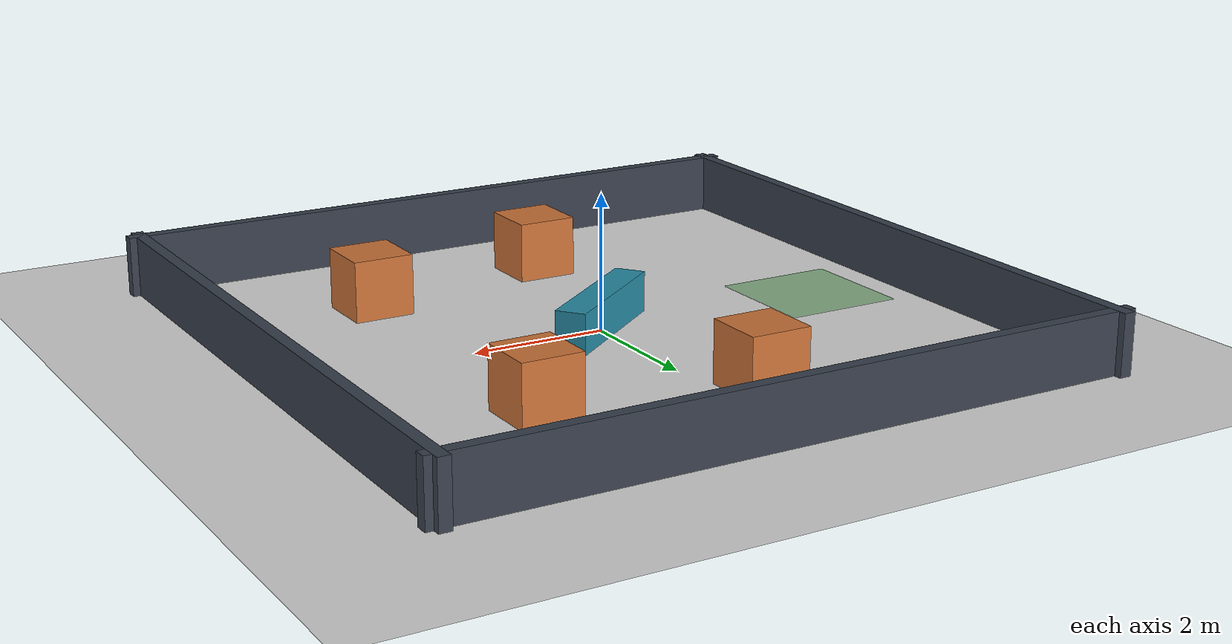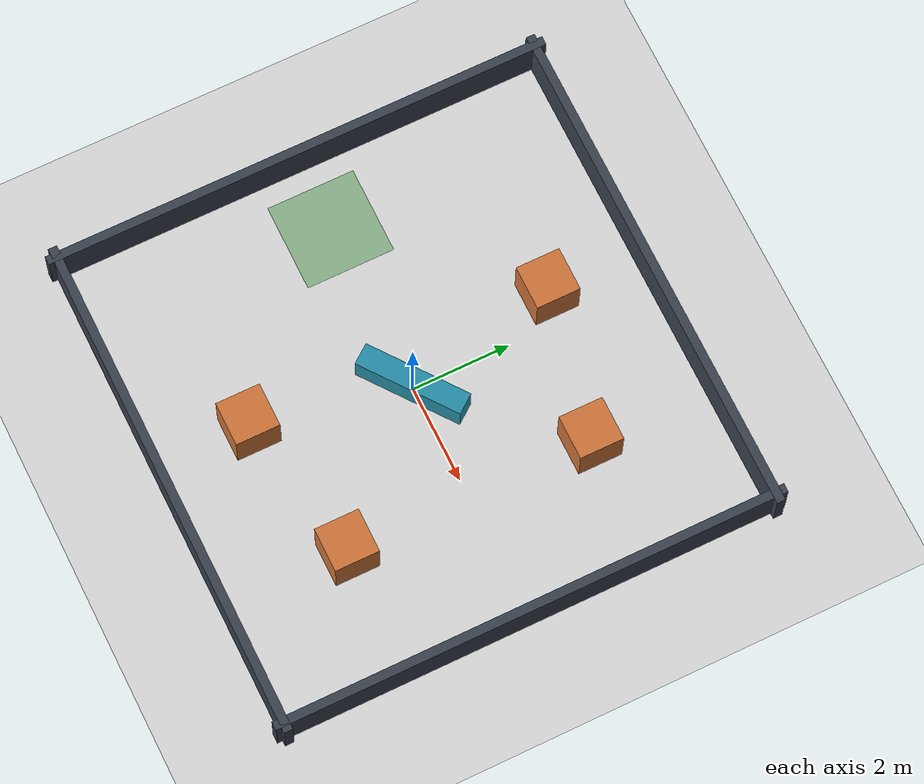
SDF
<?xml version='1.0'?>
<sdf version='1.8'>
  <world name='arena10'>
    <physics name='1ms' type='ignored'>
      <max_step_size>0.001</max_step_size>
      <real_time_factor>1.0</real_time_factor>
    </physics>

    <plugin filename='gz-sim-physics-system' name='gz::sim::systems::Physics'/>
    <plugin filename='gz-sim-user-commands-system' name='gz::sim::systems::UserCommands'/>
    <plugin filename='gz-sim-scene-broadcaster-system' name='gz::sim::systems::SceneBroadcaster'/>
    <plugin filename='gz-sim-imu-system' name='gz::sim::systems::Imu'/>
    <plugin filename='gz-sim-sensors-system' name='gz::sim::systems::Sensors'>
      <render_engine>ogre2</render_engine>
    </plugin>

    <gravity>0 0 -9.81</gravity>

    <light name='sun' type='directional'>
      <cast_shadows>true</cast_shadows>
      <pose>0 0 12 0 0 0</pose>
      <diffuse>0.95 0.95 0.95 1</diffuse>
      <specular>0.2 0.2 0.2 1</specular>
      <direction>-0.35 0.25 -0.9</direction>
    </light>

    <model name='ground_plane'>
      <static>true</static>
      <link name='link'>
        <collision name='collision'>
          <geometry>
            <plane>
              <normal>0 0 1</normal>
              <size>18 18</size>
            </plane>
          </geometry>
        </collision>
        <visual name='visual'>
          <geometry>
            <plane>
              <normal>0 0 1</normal>
              <size>18 18</size>
            </plane>
          </geometry>
          <material>
            <ambient>0.84 0.84 0.84 1</ambient>
            <diffuse>0.84 0.84 0.84 1</diffuse>
            <specular>0.08 0.08 0.08 1</specular>
          </material>
        </visual>
      </link>
    </model>

    <model name='north_wall'>
      <static>true</static>
      <pose>0 5.0 0.45 0 0 0</pose>
      <link name='link'>
        <collision name='collision'>
          <geometry>
            <box><size>10.4 0.18 0.90</size></box>
          </geometry>
        </collision>
        <visual name='visual'>
          <geometry>
            <box><size>10.4 0.18 0.90</size></box>
          </geometry>
          <material>
            <ambient>0.22 0.25 0.30 1</ambient>
            <diffuse>0.22 0.25 0.30 1</diffuse>
          </material>
        </visual>
      </link>
    </model>

    <model name='south_wall'>
      <static>true</static>
      <pose>0 -5.0 0.45 0 0 0</pose>
      <link name='link'>
        <collision name='collision'>
          <geometry>
            <box><size>10.4 0.18 0.90</size></box>
          </geometry>
        </collision>
        <visual name='visual'>
          <geometry>
            <box><size>10.4 0.18 0.90</size></box>
          </geometry>
          <material>
            <ambient>0.22 0.25 0.30 1</ambient>
            <diffuse>0.22 0.25 0.30 1</diffuse>
          </material>
        </visual>
      </link>
    </model>

    <model name='east_wall'>
      <static>true</static>
      <pose>5.0 0 0.45 0 0 0</pose>
      <link name='link'>
        <collision name='collision'>
          <geometry>
            <box><size>0.18 10.4 0.90</size></box>
          </geometry>
        </collision>
        <visual name='visual'>
          <geometry>
            <box><size>0.18 10.4 0.90</size></box>
          </geometry>
          <material>
            <ambient>0.22 0.25 0.30 1</ambient>
            <diffuse>0.22 0.25 0.30 1</diffuse>
          </material>
        </visual>
      </link>
    </model>

    <model name='west_wall'>
      <static>true</static>
      <pose>-5.0 0 0.45 0 0 0</pose>
      <link name='link'>
        <collision name='collision'>
          <geometry>
            <box><size>0.18 10.4 0.90</size></box>
          </geometry>
        </collision>
        <visual name='visual'>
          <geometry>
            <box><size>0.18 10.4 0.90</size></box>
          </geometry>
          <material>
            <ambient>0.22 0.25 0.30 1</ambient>
            <diffuse>0.22 0.25 0.30 1</diffuse>
          </material>
        </visual>
      </link>
    </model>

    <model name='spawn_pad'>
      <static>true</static>
      <pose>-3.6 0 0.005 0 0 0</pose>
      <link name='link'>
        <collision name='collision'>
          <geometry>
            <box><size>1.80 1.80 0.01</size></box>
          </geometry>
        </collision>
        <visual name='visual'>
          <geometry>
            <box><size>1.80 1.80 0.01</size></box>
          </geometry>
          <material>
            <ambient>0.20 0.55 0.20 0.45</ambient>
            <diffuse>0.20 0.55 0.20 0.45</diffuse>
            <specular>0.02 0.05 0.02 0.10</specular>
          </material>
        </visual>
      </link>
    </model>

    <model name='pillar_nw'>
      <static>true</static>
      <pose>-0.6 3.1 0.45 0 0 0</pose>
      <link name='link'>
        <collision name='collision'>
          <geometry>
            <box><size>0.90 0.90 0.90</size></box>
          </geometry>
        </collision>
        <visual name='visual'>
          <geometry>
            <box><size>0.90 0.90 0.90</size></box>
          </geometry>
          <material>
            <ambient>0.80 0.45 0.22 1</ambient>
            <diffuse>0.80 0.45 0.22 1</diffuse>
          </material>
        </visual>
      </link>
    </model>

    <model name='pillar_ne'>
      <static>true</static>
      <pose>2.4 2.5 0.45 0 0 0</pose>
      <link name='link'>
        <collision name='collision'>
          <geometry>
            <box><size>0.90 0.90 0.90</size></box>
          </geometry>
        </collision>
        <visual name='visual'>
          <geometry>
            <box><size>0.90 0.90 0.90</size></box>
          </geometry>
          <material>
            <ambient>0.80 0.45 0.22 1</ambient>
            <diffuse>0.80 0.45 0.22 1</diffuse>
          </material>
        </visual>
      </link>
    </model>

    <model name='pillar_sw'>
      <static>true</static>
      <pose>-0.6 -3.1 0.45 0 0 0</pose>
      <link name='link'>
        <collision name='collision'>
          <geometry>
            <box><size>0.90 0.90 0.90</size></box>
          </geometry>
        </collision>
        <visual name='visual'>
          <geometry>
            <box><size>0.90 0.90 0.90</size></box>
          </geometry>
          <material>
            <ambient>0.80 0.45 0.22 1</ambient>
            <diffuse>0.80 0.45 0.22 1</diffuse>
          </material>
        </visual>
      </link>
    </model>

    <model name='pillar_se'>
      <static>true</static>
      <pose>2.4 -2.5 0.45 0 0 0</pose>
      <link name='link'>
        <collision name='collision'>
          <geometry>
            <box><size>0.90 0.90 0.90</size></box>
          </geometry>
        </collision>
        <visual name='visual'>
          <geometry>
            <box><size>0.90 0.90 0.90</size></box>
          </geometry>
          <material>
            <ambient>0.80 0.45 0.22 1</ambient>
            <diffuse>0.80 0.45 0.22 1</diffuse>
          </material>
        </visual>
      </link>
    </model>

    <model name='center_bar'>
      <static>true</static>
      <pose>0 0 0.30 0 0 0.65</pose>
      <link name='link'>
        <collision name='collision'>
          <geometry>
            <box><size>2.20 0.45 0.60</size></box>
          </geometry>
        </collision>
        <visual name='visual'>
          <geometry>
            <box><size>2.20 0.45 0.60</size></box>
          </geometry>
          <material>
            <ambient>0.15 0.55 0.65 1</ambient>
            <diffuse>0.15 0.55 0.65 1</diffuse>
          </material>
        </visual>
      </link>
    </model>
  </world>
</sdf>
